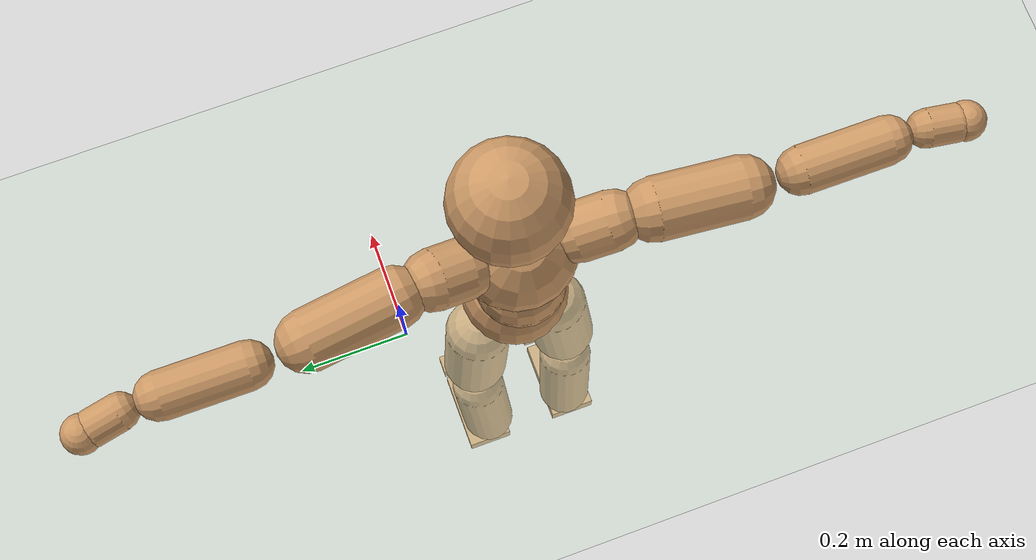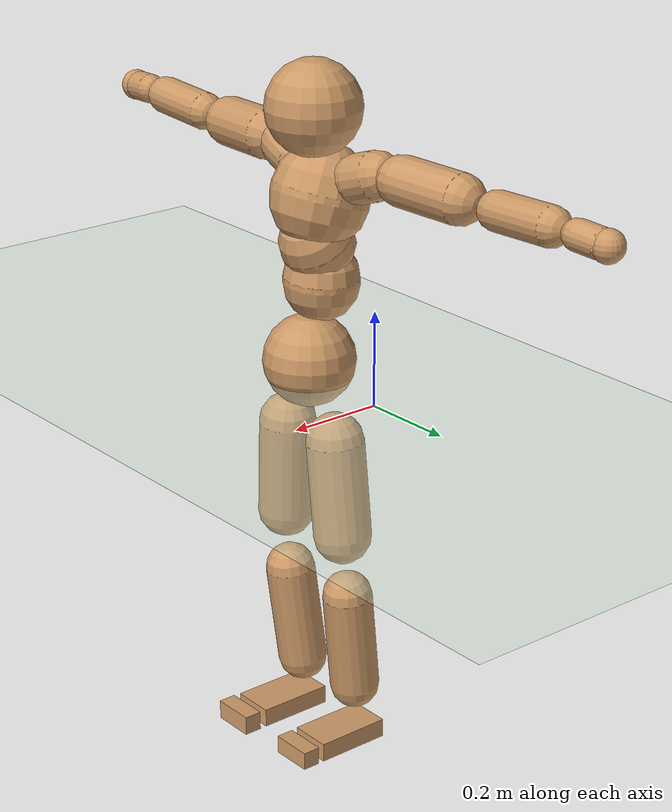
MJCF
<mujoco model="humanoid">
  <compiler coordinate="local"/>
  <default>
    <joint damping="0.0" armature="0.01" stiffness="0.0" limited="true"/>
    <geom conaffinity="1" condim="3" contype="7" margin="0.001" rgba="0.8 0.6 .4 1"/>
  </default>
  <asset>
    <texture type="skybox" builtin="gradient" rgb1=".4 .5 .6" rgb2="0 0 0" width="100" height="100"/>
    <texture builtin="flat" height="1278" mark="cross" markrgb="1 1 1" name="texgeom" random="0.01" rgb1="0.8 0.6 0.4" rgb2="0.8 0.6 0.4" type="cube" width="127"/>
    <texture builtin="checker" height="100" name="texplane" rgb1="0 0 0" rgb2="0.8 0.8 0.8" type="2d" width="100"/>
    <material name="MatPlane" reflectance="0.5" shininess="1" specular="1" texrepeat="60 60" texture="texplane"/>
    <material name="geom" texture="texgeom" texuniform="true"/>
  </asset>
  <worldbody>
    <light cutoff="100" diffuse="1 1 1" dir="-0 0 -1.3" directional="true" exponent="1" pos="0 0 1.3" specular=".1 .1 .1"/>
    <geom conaffinity="1" condim="3" name="floor" pos="0 0 0" rgba="0.8 0.9 0.8 1" size="100 100 .2" type="plane" material="MatPlane"/>
    <body name="Pelvis" pos="-0.0006 -0.2095 0.0371">
      <freejoint name="Pelvis"/>
      <geom type="sphere" contype="1" conaffinity="1" density="4629.6296296296305" size="0.0981" pos="0.0000 0.0000 0.0000" name="Pelvis"/>
      <body name="L_Hip" pos="-0.0028 0.0722 -0.0908">
        <joint name="L_Hip_x" type="hinge" pos="0 0 0" axis="1 0 0" stiffness="800" damping="80" armature="0.02" range="-90.0000 90.0000"/>
        <joint name="L_Hip_y" type="hinge" pos="0 0 0" axis="0 1 0" stiffness="800" damping="80" armature="0.02" range="-90.0000 90.0000"/>
        <joint name="L_Hip_z" type="hinge" pos="0 0 0" axis="0 0 1" stiffness="800" damping="80" armature="0.02" range="-90.0000 90.0000"/>
        <geom type="capsule" contype="1" conaffinity="1" density="2040.816327" fromto="-0.0021 0.0053 -0.0700 -0.0085 0.0213 -0.2799" size="0.062" name="L_Hip"/>
        <body name="L_Knee" pos="-0.0106 0.0266 -0.3499">
          <joint name="L_Knee_x" type="hinge" pos="0 0 0" axis="1 0 0" stiffness="800" damping="80" armature="0.02" range="-5.6250 5.6250"/>
          <joint name="L_Knee_y" type="hinge" pos="0 0 0" axis="0 1 0" stiffness="800" damping="80" armature="0.02" range="0.0000 180.0000"/>
          <joint name="L_Knee_z" type="hinge" pos="0 0 0" axis="0 0 1" stiffness="800" damping="80" armature="0.02" range="-5.6250 5.6250"/>
          <geom type="capsule" contype="1" conaffinity="1" density="1234.567901" fromto="-0.0088 -0.0025 -0.0751 -0.0352 -0.0098 -0.3004" size="0.0535" name="L_Knee"/>
          <body name="L_Ankle" pos="-0.044 -0.0123 -0.3755">
            <joint name="L_Ankle_x" type="hinge" pos="0 0 0" axis="1 0 0" stiffness="800" damping="80" armature="0.02" range="-45.0000 45.0000"/>
            <joint name="L_Ankle_y" type="hinge" pos="0 0 0" axis="0 1 0" stiffness="800" damping="80" armature="0.02" range="-90.0000 90.0000"/>
            <joint name="L_Ankle_z" type="hinge" pos="0 0 0" axis="0 0 1" stiffness="800" damping="80" armature="0.02" range="-45.0000 45.0000"/>
            <geom type="box" contype="1" conaffinity="1" density="999.999926" pos="0.0573 0.0116 -0.0267" size="0.0831 0.0462 0.0207" quat="1.0000 0.0000 0.0000 0.0000" name="L_Ankle"/>
            <body name="L_Toe" pos="0.1146 0.0232 -0.0534">
              <joint name="L_Toe_x" type="hinge" pos="0 0 0" axis="1 0 0" stiffness="500" damping="50" armature="0.02" range="-180.0000 180.0000"/>
              <joint name="L_Toe_y" type="hinge" pos="0 0 0" axis="0 1 0" stiffness="500" damping="50" armature="0.02" range="-180.0000 180.0000"/>
              <joint name="L_Toe_z" type="hinge" pos="0 0 0" axis="0 0 1" stiffness="500" damping="50" armature="0.02" range="-180.0000 180.0000"/>
              <geom type="box" contype="1" conaffinity="1" density="1060.762229" pos="0.0583 -0.0116 0.0256" size="0.0194 0.0466 0.0196" quat="1.0000 0.0000 0.0000 0.0000" name="L_Toe"/>
            </body>
          </body>
        </body>
      </body>
      <body name="R_Hip" pos="0.0012 -0.0705 -0.0905">
        <joint name="R_Hip_x" type="hinge" pos="0 0 0" axis="1 0 0" stiffness="800" damping="80" armature="0.02" range="-90.0000 90.0000"/>
        <joint name="R_Hip_y" type="hinge" pos="0 0 0" axis="0 1 0" stiffness="800" damping="80" armature="0.02" range="-90.0000 90.0000"/>
        <joint name="R_Hip_z" type="hinge" pos="0 0 0" axis="0 0 1" stiffness="800" damping="80" armature="0.02" range="-90.0000 90.0000"/>
        <geom type="capsule" contype="1" conaffinity="1" density="2040.816327" fromto="-0.0027 -0.0063 -0.0714 -0.0108 -0.0250 -0.2857" size="0.0614" name="R_Hip"/>
        <body name="R_Knee" pos="-0.0135 -0.0313 -0.3571">
          <joint name="R_Knee_x" type="hinge" pos="0 0 0" axis="1 0 0" stiffness="800" damping="80" armature="0.02" range="-5.6250 5.6250"/>
          <joint name="R_Knee_y" type="hinge" pos="0 0 0" axis="0 1 0" stiffness="800" damping="80" armature="0.02" range="0.0000 180.0000"/>
          <joint name="R_Knee_z" type="hinge" pos="0 0 0" axis="0 0 1" stiffness="800" damping="80" armature="0.02" range="-5.6250 5.6250"/>
          <geom type="capsule" contype="1" conaffinity="1" density="1234.567901" fromto="-0.0087 0.0028 -0.0752 -0.0347 0.0112 -0.3010" size="0.0537" name="R_Knee"/>
          <body name="R_Ankle" pos="-0.0433 0.014 -0.3762">
            <joint name="R_Ankle_x" type="hinge" pos="0 0 0" axis="1 0 0" stiffness="800" damping="80" armature="0.02" range="-45.0000 45.0000"/>
            <joint name="R_Ankle_y" type="hinge" pos="0 0 0" axis="0 1 0" stiffness="800" damping="80" armature="0.02" range="-90.0000 90.0000"/>
            <joint name="R_Ankle_z" type="hinge" pos="0 0 0" axis="0 0 1" stiffness="800" damping="80" armature="0.02" range="-45.0000 45.0000"/>
            <geom type="box" contype="1" conaffinity="1" density="1000.000062" pos="0.0592 -0.0121 -0.0223" size="0.0838 0.0472 0.0204" quat="1.0000 0.0000 0.0000 0.0000" name="R_Ankle"/>
            <body name="R_Toe" pos="0.1184 -0.0241 -0.0446">
              <joint name="R_Toe_x" type="hinge" pos="0 0 0" axis="1 0 0" stiffness="500" damping="50" armature="0.02" range="-180.0000 180.0000"/>
              <joint name="R_Toe_y" type="hinge" pos="0 0 0" axis="0 1 0" stiffness="500" damping="50" armature="0.02" range="-180.0000 180.0000"/>
              <joint name="R_Toe_z" type="hinge" pos="0 0 0" axis="0 0 1" stiffness="500" damping="50" armature="0.02" range="-180.0000 180.0000"/>
              <geom type="box" contype="1" conaffinity="1" density="1008.113437" pos="0.0602 0.0121 0.0231" size="0.0195 0.0476 0.0212" quat="1.0000 0.0000 0.0000 0.0000" name="R_Toe"/>
            </body>
          </body>
        </body>
      </body>
      <body name="Torso" pos="-0.0303 -0.0022 0.1064">
        <joint name="Torso_x" type="hinge" pos="0 0 0" axis="1 0 0" stiffness="1000" damping="100" armature="0.02" range="-60.0000 60.0000"/>
        <joint name="Torso_y" type="hinge" pos="0 0 0" axis="0 1 0" stiffness="1000" damping="100" armature="0.02" range="-60.0000 60.0000"/>
        <joint name="Torso_z" type="hinge" pos="0 0 0" axis="0 0 1" stiffness="1000" damping="100" armature="0.02" range="-60.0000 60.0000"/>
        <geom type="capsule" contype="1" conaffinity="1" density="2040.816327" fromto="-0.0022 0.0017 0.0542 -0.0026 0.0021 0.0663" size="0.0803" name="Torso"/>
        <body name="Spine" pos="-0.0048 0.0038 0.1205">
          <joint name="Spine_x" type="hinge" pos="0 0 0" axis="1 0 0" stiffness="1000" damping="100" armature="0.02" range="-60.0000 60.0000"/>
          <joint name="Spine_y" type="hinge" pos="0 0 0" axis="0 1 0" stiffness="1000" damping="100" armature="0.02" range="-60.0000 60.0000"/>
          <joint name="Spine_z" type="hinge" pos="0 0 0" axis="0 0 1" stiffness="1000" damping="100" armature="0.02" range="-60.0000 60.0000"/>
          <geom type="capsule" contype="1" conaffinity="1" density="2040.816327" fromto="0.0136 0.0009 0.0217 0.0166 0.0011 0.0265" size="0.0791" name="Spine"/>
          <body name="Chest" pos="0.0302 0.0019 0.0483">
            <joint name="Chest_x" type="hinge" pos="0 0 0" axis="1 0 0" stiffness="1000" damping="100" armature="0.02" range="-60.0000 60.0000"/>
            <joint name="Chest_y" type="hinge" pos="0 0 0" axis="0 1 0" stiffness="1000" damping="100" armature="0.02" range="-60.0000 60.0000"/>
            <joint name="Chest_z" type="hinge" pos="0 0 0" axis="0 0 1" stiffness="1000" damping="100" armature="0.02" range="-60.0000 60.0000"/>
            <geom type="capsule" contype="1" conaffinity="1" density="2040.816327" fromto="-0.0207 -0.0003 0.0659 -0.0254 -0.0004 0.0806" size="0.1031" name="Chest"/>
            <body name="Neck" pos="-0.0535 -0.0003 0.2031">
              <joint name="Neck_x" type="hinge" pos="0 0 0" axis="1 0 0" stiffness="500" damping="50" armature="0.02" range="-5.6250 5.6250"/>
              <joint name="Neck_y" type="hinge" pos="0 0 0" axis="0 1 0" stiffness="500" damping="50" armature="0.02" range="-90.0000 90.0000"/>
              <joint name="Neck_z" type="hinge" pos="0 0 0" axis="0 0 1" stiffness="500" damping="50" armature="0.02" range="-90.0000 90.0000"/>
              <geom type="capsule" contype="1" conaffinity="1" density="1000" fromto="0.0097 0.0005 0.0109 0.0387 0.0022 0.0437" size="0.0425" name="Neck"/>
              <body name="Head" pos="0.0484 0.0027 0.0546">
                <joint name="Head_x" type="hinge" pos="0 0 0" axis="1 0 0" stiffness="500" damping="50" armature="0.02" range="-5.6250 5.6250"/>
                <joint name="Head_y" type="hinge" pos="0 0 0" axis="0 1 0" stiffness="500" damping="50" armature="0.02" range="-90.0000 90.0000"/>
                <joint name="Head_z" type="hinge" pos="0 0 0" axis="0 0 1" stiffness="500" damping="50" armature="0.02" range="-90.0000 90.0000"/>
                <geom type="sphere" contype="1" conaffinity="1" density="1000" size="0.1002" pos="0.0000 0.0000 0.0000" name="Head"/>
              </body>
            </body>
            <body name="L_Thorax" pos="-0.0404 0.0775 0.119">
              <joint name="L_Thorax_x" type="hinge" pos="0 0 0" axis="1 0 0" stiffness="500" damping="50" armature="0.02" range="-5.6250 5.6250"/>
              <joint name="L_Thorax_y" type="hinge" pos="0 0 0" axis="0 1 0" stiffness="500" damping="50" armature="0.02" range="-5.6250 5.6250"/>
              <joint name="L_Thorax_z" type="hinge" pos="0 0 0" axis="0 0 1" stiffness="500" damping="50" armature="0.02" range="-5.6250 5.6250"/>
              <geom type="capsule" contype="1" conaffinity="1" density="1000" fromto="-0.0018 0.0173 0.0058 -0.0073 0.0692 0.0232" size="0.0514" name="L_Thorax"/>
              <body name="L_Shoulder" pos="-0.0091 0.0865 0.029">
                <joint name="L_Shoulder_x" type="hinge" pos="0 0 0" axis="1 0 0" stiffness="500" damping="50" armature="0.02" range="-720.0000 720.0000"/>
                <joint name="L_Shoulder_y" type="hinge" pos="0 0 0" axis="0 1 0" stiffness="500" damping="50" armature="0.02" range="-720.0000 720.0000"/>
                <joint name="L_Shoulder_z" type="hinge" pos="0 0 0" axis="0 0 1" stiffness="500" damping="50" armature="0.02" range="-720.0000 720.0000"/>
                <geom type="capsule" contype="1" conaffinity="1" density="1000" fromto="-0.0058 0.0495 -0.0016 -0.0232 0.1980 -0.0064" size="0.0521" name="L_Shoulder"/>
                <body name="L_Elbow" pos="-0.029 0.2476 -0.008">
                  <joint name="L_Elbow_x" type="hinge" pos="0 0 0" axis="1 0 0" stiffness="500" damping="50" armature="0.02" range="-5.6250 5.6250"/>
                  <joint name="L_Elbow_y" type="hinge" pos="0 0 0" axis="0 1 0" stiffness="500" damping="50" armature="0.02" range="-5.6250 5.6250"/>
                  <joint name="L_Elbow_z" type="hinge" pos="0 0 0" axis="0 0 1" stiffness="500" damping="50" armature="0.02" range="-180.0000 0.0000"/>
                  <geom type="capsule" contype="1" conaffinity="1" density="1000" fromto="-0.0001 0.0476 0.0017 -0.0003 0.1906 0.0069" size="0.0404" name="L_Elbow"/>
                  <body name="L_Wrist" pos="-0.0004 0.2382 0.0087">
                    <joint name="L_Wrist_x" type="hinge" pos="0 0 0" axis="1 0 0" stiffness="300" damping="30" armature="0.02" range="-180.0000 180.0000"/>
                    <joint name="L_Wrist_y" type="hinge" pos="0 0 0" axis="0 1 0" stiffness="300" damping="30" armature="0.02" range="-180.0000 180.0000"/>
                    <joint name="L_Wrist_z" type="hinge" pos="0 0 0" axis="0 0 1" stiffness="300" damping="30" armature="0.02" range="-180.0000 180.0000"/>
                    <geom type="capsule" contype="1" conaffinity="1" density="1000" fromto="-0.0028 0.0164 -0.0017 -0.0113 0.0657 -0.0070" size="0.0313" name="L_Wrist"/>
                    <body name="L_Hand" pos="-0.0141 0.0821 -0.0087">
                      <joint name="L_Hand_x" type="hinge" pos="0 0 0" axis="1 0 0" stiffness="300" damping="30" armature="0.02" range="-180.0000 180.0000"/>
                      <joint name="L_Hand_y" type="hinge" pos="0 0 0" axis="0 1 0" stiffness="300" damping="30" armature="0.02" range="-180.0000 180.0000"/>
                      <joint name="L_Hand_z" type="hinge" pos="0 0 0" axis="0 0 1" stiffness="300" damping="30" armature="0.02" range="-180.0000 180.0000"/>
                      <geom type="sphere" contype="1" conaffinity="1" density="1000" size="0.0331" pos="0.0000 0.0000 0.0000" name="L_Hand"/>
                    </body>
                  </body>
                </body>
              </body>
            </body>
            <body name="R_Thorax" pos="-0.0444 -0.0792 0.1172">
              <joint name="R_Thorax_x" type="hinge" pos="0 0 0" axis="1 0 0" stiffness="500" damping="50" armature="0.02" range="-5.6250 5.6250"/>
              <joint name="R_Thorax_y" type="hinge" pos="0 0 0" axis="0 1 0" stiffness="500" damping="50" armature="0.02" range="-5.6250 5.6250"/>
              <joint name="R_Thorax_z" type="hinge" pos="0 0 0" axis="0 0 1" stiffness="500" damping="50" armature="0.02" range="-5.6250 5.6250"/>
              <geom type="capsule" contype="1" conaffinity="1" density="1000" fromto="-0.0021 -0.0184 0.0059 -0.0085 -0.0735 0.0237" size="0.0508" name="R_Thorax"/>
              <body name="R_Shoulder" pos="-0.0106 -0.0919 0.0296">
                <joint name="R_Shoulder_x" type="hinge" pos="0 0 0" axis="1 0 0" stiffness="500" damping="50" armature="0.02" range="-720.0000 720.0000"/>
                <joint name="R_Shoulder_y" type="hinge" pos="0 0 0" axis="0 1 0" stiffness="500" damping="50" armature="0.02" range="-720.0000 720.0000"/>
                <joint name="R_Shoulder_z" type="hinge" pos="0 0 0" axis="0 0 1" stiffness="500" damping="50" armature="0.02" range="-720.0000 720.0000"/>
                <geom type="capsule" contype="1" conaffinity="1" density="1000" fromto="-0.0044 -0.0489 -0.0018 -0.0174 -0.1957 -0.0072" size="0.0537" name="R_Shoulder"/>
                <body name="R_Elbow" pos="-0.0218 -0.2446 -0.009">
                  <joint name="R_Elbow_x" type="hinge" pos="0 0 0" axis="1 0 0" stiffness="500" damping="50" armature="0.02" range="-5.6250 5.6250"/>
                  <joint name="R_Elbow_y" type="hinge" pos="0 0 0" axis="0 1 0" stiffness="500" damping="50" armature="0.02" range="-5.6250 5.6250"/>
                  <joint name="R_Elbow_z" type="hinge" pos="0 0 0" axis="0 0 1" stiffness="500" damping="50" armature="0.02" range="0.0000 180.0000"/>
                  <geom type="capsule" contype="1" conaffinity="1" density="1000" fromto="-0.0008 -0.0492 0.0019 -0.0030 -0.1968 0.0077" size="0.041" name="R_Elbow"/>
                  <body name="R_Wrist" pos="-0.0038 -0.246 0.0096">
                    <joint name="R_Wrist_x" type="hinge" pos="0 0 0" axis="1 0 0" stiffness="300" damping="30" armature="0.02" range="-180.0000 180.0000"/>
                    <joint name="R_Wrist_y" type="hinge" pos="0 0 0" axis="0 1 0" stiffness="300" damping="30" armature="0.02" range="-180.0000 180.0000"/>
                    <joint name="R_Wrist_z" type="hinge" pos="0 0 0" axis="0 0 1" stiffness="300" damping="30" armature="0.02" range="-180.0000 180.0000"/>
                    <geom type="capsule" contype="1" conaffinity="1" density="1000" fromto="-0.0021 -0.0168 -0.0014 -0.0086 -0.0672 -0.0055" size="0.0325" name="R_Wrist"/>
                    <body name="R_Hand" pos="-0.0107 -0.084 -0.0068">
                      <joint name="R_Hand_x" type="hinge" pos="0 0 0" axis="1 0 0" stiffness="300" damping="30" armature="0.02" range="-180.0000 180.0000"/>
                      <joint name="R_Hand_y" type="hinge" pos="0 0 0" axis="0 1 0" stiffness="300" damping="30" armature="0.02" range="-180.0000 180.0000"/>
                      <joint name="R_Hand_z" type="hinge" pos="0 0 0" axis="0 0 1" stiffness="300" damping="30" armature="0.02" range="-180.0000 180.0000"/>
                      <geom type="sphere" contype="1" conaffinity="1" density="1000" size="0.0338" pos="0.0000 0.0000 0.0000" name="R_Hand"/>
                    </body>
                  </body>
                </body>
              </body>
            </body>
          </body>
        </body>
      </body>
    </body>
  </worldbody>
  <actuator>
    <motor name="L_Hip_x" joint="L_Hip_x" gear="500"/>
    <motor name="L_Hip_y" joint="L_Hip_y" gear="500"/>
    <motor name="L_Hip_z" joint="L_Hip_z" gear="500"/>
    <motor name="L_Knee_x" joint="L_Knee_x" gear="500"/>
    <motor name="L_Knee_y" joint="L_Knee_y" gear="500"/>
    <motor name="L_Knee_z" joint="L_Knee_z" gear="500"/>
    <motor name="L_Ankle_x" joint="L_Ankle_x" gear="500"/>
    <motor name="L_Ankle_y" joint="L_Ankle_y" gear="500"/>
    <motor name="L_Ankle_z" joint="L_Ankle_z" gear="500"/>
    <motor name="L_Toe_x" joint="L_Toe_x" gear="500"/>
    <motor name="L_Toe_y" joint="L_Toe_y" gear="500"/>
    <motor name="L_Toe_z" joint="L_Toe_z" gear="500"/>
    <motor name="R_Hip_x" joint="R_Hip_x" gear="500"/>
    <motor name="R_Hip_y" joint="R_Hip_y" gear="500"/>
    <motor name="R_Hip_z" joint="R_Hip_z" gear="500"/>
    <motor name="R_Knee_x" joint="R_Knee_x" gear="500"/>
    <motor name="R_Knee_y" joint="R_Knee_y" gear="500"/>
    <motor name="R_Knee_z" joint="R_Knee_z" gear="500"/>
    <motor name="R_Ankle_x" joint="R_Ankle_x" gear="500"/>
    <motor name="R_Ankle_y" joint="R_Ankle_y" gear="500"/>
    <motor name="R_Ankle_z" joint="R_Ankle_z" gear="500"/>
    <motor name="R_Toe_x" joint="R_Toe_x" gear="500"/>
    <motor name="R_Toe_y" joint="R_Toe_y" gear="500"/>
    <motor name="R_Toe_z" joint="R_Toe_z" gear="500"/>
    <motor name="Torso_x" joint="Torso_x" gear="500"/>
    <motor name="Torso_y" joint="Torso_y" gear="500"/>
    <motor name="Torso_z" joint="Torso_z" gear="500"/>
    <motor name="Spine_x" joint="Spine_x" gear="500"/>
    <motor name="Spine_y" joint="Spine_y" gear="500"/>
    <motor name="Spine_z" joint="Spine_z" gear="500"/>
    <motor name="Chest_x" joint="Chest_x" gear="500"/>
    <motor name="Chest_y" joint="Chest_y" gear="500"/>
    <motor name="Chest_z" joint="Chest_z" gear="500"/>
    <motor name="Neck_x" joint="Neck_x" gear="500"/>
    <motor name="Neck_y" joint="Neck_y" gear="500"/>
    <motor name="Neck_z" joint="Neck_z" gear="500"/>
    <motor name="Head_x" joint="Head_x" gear="500"/>
    <motor name="Head_y" joint="Head_y" gear="500"/>
    <motor name="Head_z" joint="Head_z" gear="500"/>
    <motor name="L_Thorax_x" joint="L_Thorax_x" gear="500"/>
    <motor name="L_Thorax_y" joint="L_Thorax_y" gear="500"/>
    <motor name="L_Thorax_z" joint="L_Thorax_z" gear="500"/>
    <motor name="L_Shoulder_x" joint="L_Shoulder_x" gear="500"/>
    <motor name="L_Shoulder_y" joint="L_Shoulder_y" gear="500"/>
    <motor name="L_Shoulder_z" joint="L_Shoulder_z" gear="500"/>
    <motor name="L_Elbow_x" joint="L_Elbow_x" gear="500"/>
    <motor name="L_Elbow_y" joint="L_Elbow_y" gear="500"/>
    <motor name="L_Elbow_z" joint="L_Elbow_z" gear="500"/>
    <motor name="L_Wrist_x" joint="L_Wrist_x" gear="500"/>
    <motor name="L_Wrist_y" joint="L_Wrist_y" gear="500"/>
    <motor name="L_Wrist_z" joint="L_Wrist_z" gear="500"/>
    <motor name="L_Hand_x" joint="L_Hand_x" gear="500"/>
    <motor name="L_Hand_y" joint="L_Hand_y" gear="500"/>
    <motor name="L_Hand_z" joint="L_Hand_z" gear="500"/>
    <motor name="R_Thorax_x" joint="R_Thorax_x" gear="500"/>
    <motor name="R_Thorax_y" joint="R_Thorax_y" gear="500"/>
    <motor name="R_Thorax_z" joint="R_Thorax_z" gear="500"/>
    <motor name="R_Shoulder_x" joint="R_Shoulder_x" gear="500"/>
    <motor name="R_Shoulder_y" joint="R_Shoulder_y" gear="500"/>
    <motor name="R_Shoulder_z" joint="R_Shoulder_z" gear="500"/>
    <motor name="R_Elbow_x" joint="R_Elbow_x" gear="500"/>
    <motor name="R_Elbow_y" joint="R_Elbow_y" gear="500"/>
    <motor name="R_Elbow_z" joint="R_Elbow_z" gear="500"/>
    <motor name="R_Wrist_x" joint="R_Wrist_x" gear="500"/>
    <motor name="R_Wrist_y" joint="R_Wrist_y" gear="500"/>
    <motor name="R_Wrist_z" joint="R_Wrist_z" gear="500"/>
    <motor name="R_Hand_x" joint="R_Hand_x" gear="500"/>
    <motor name="R_Hand_y" joint="R_Hand_y" gear="500"/>
    <motor name="R_Hand_z" joint="R_Hand_z" gear="500"/>
  </actuator>
  <contact>
    <exclude body1="Torso" body2="Chest"/>
    <exclude body1="Head" body2="Chest"/>
    <exclude body1="R_Knee" body2="R_Toe"/>
    <exclude body1="R_Knee" body2="L_Ankle"/>
    <exclude body1="R_Knee" body2="L_Toe"/>
    <exclude body1="L_Knee" body2="L_Toe"/>
    <exclude body1="L_Knee" body2="R_Ankle"/>
    <exclude body1="L_Knee" body2="R_Toe"/>
    <exclude body1="L_Shoulder" body2="Chest"/>
    <exclude body1="R_Shoulder" body2="Chest"/>
  </contact>
  <sensor/>
  <size njmax="700" nconmax="700"/>
</mujoco>
